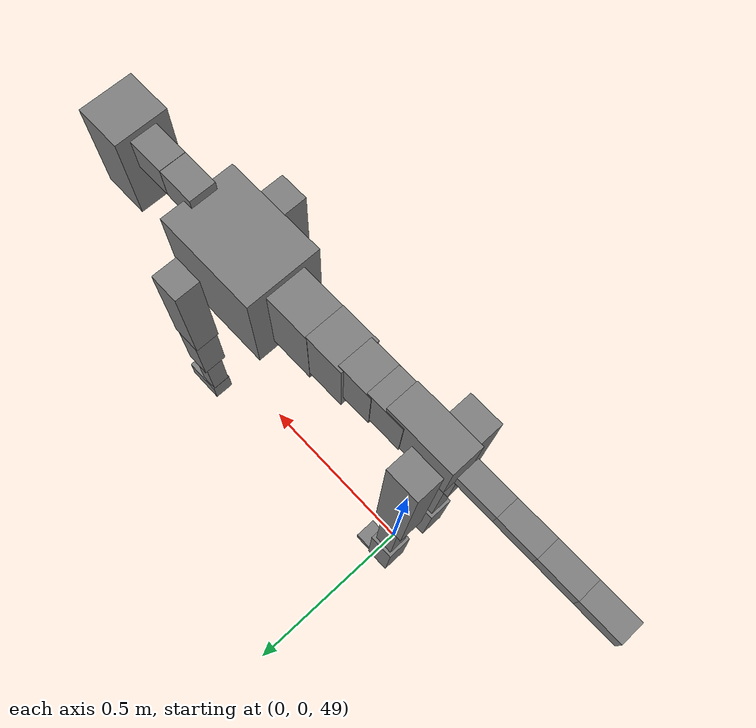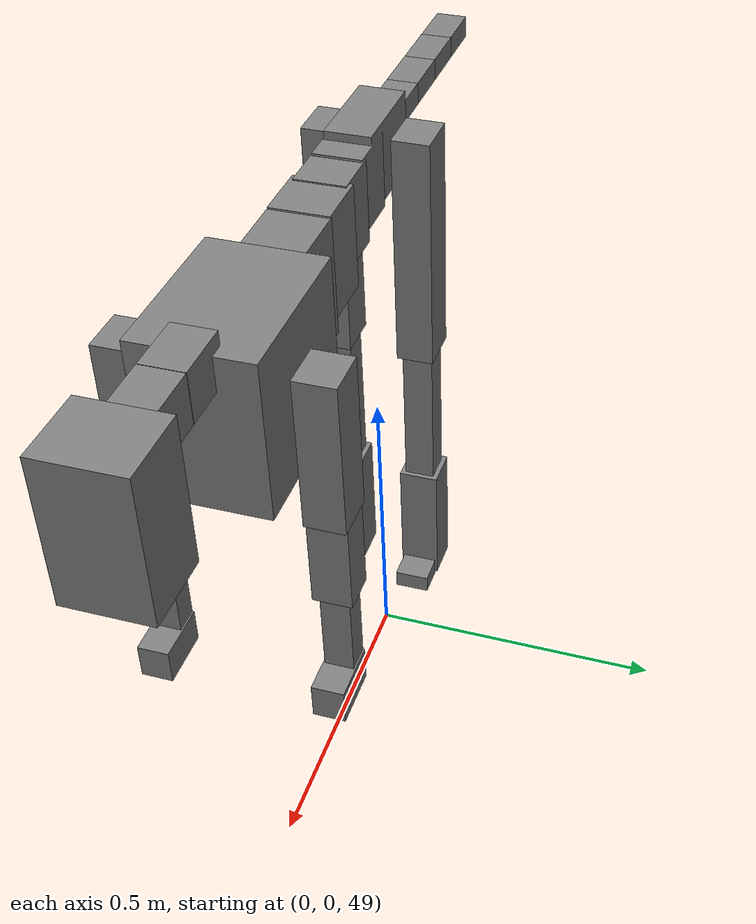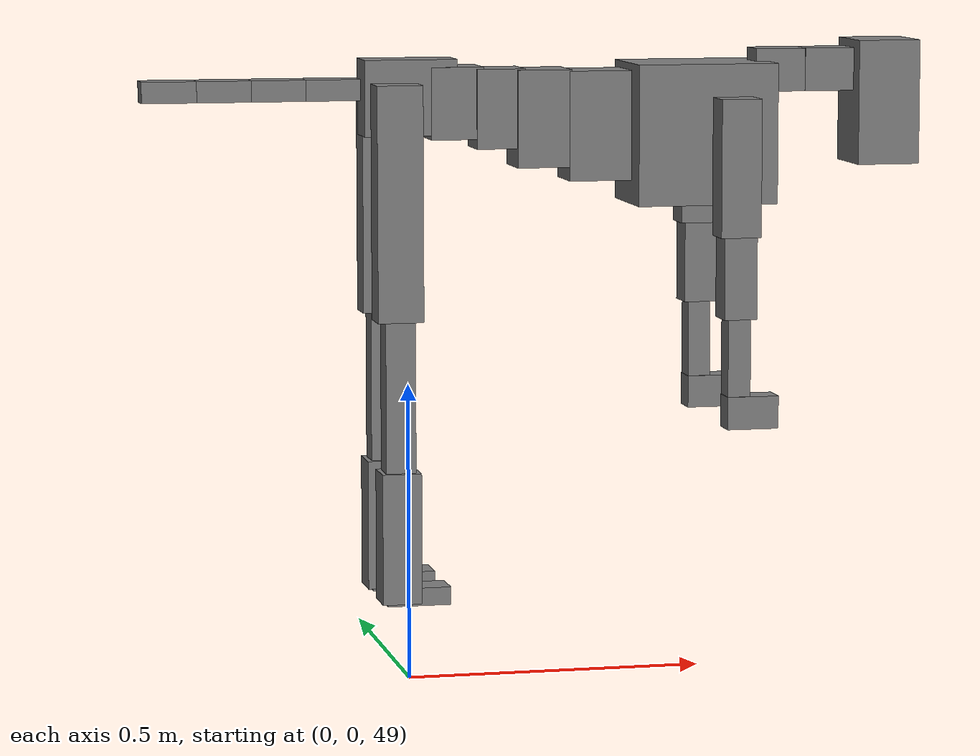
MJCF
<mujoco model="dog">

    <default>
        <joint armature="0.02" stiffness="1" damping="0.2" limited="true"/>
        <geom condim="3" friction="1 0.05 0.05" margin="0.01"/>
        <motor ctrllimited="true" ctrlrange="-1.0 1.0" forcelimited="true" gear="50"/>
    </default>

    <compiler inertiafromgeom="true" angle="radian"/>

    <option timestep="0.016" iterations="50" tolerance="1e-10" solver="Newton" jacobian="dense" cone="pyramidal"/>

    <size nconmax="20000" njmax="60000" nstack="5000000"/>
    <visual>
        <map force="0.1" zfar="30"/>
        <rgba haze="0.15 0.25 0.35 1"/>
        <quality shadowsize="2048"/>
        <global offwidth="800" offheight="800"/>
    </visual>

    <asset>
        <texture type="skybox" builtin="gradient" rgb1="0.3 0.5 0.7" rgb2="0 0 0" width="512" height="512"/>
        <texture name="texplane" type="2d" builtin="checker" rgb1=".2 .3 .4" rgb2=".1 0.15 0.2" width="512" height="512"
                 mark="cross" markrgb=".8 .8 .8"/>
        <texture name="texgeom" type="cube" builtin="flat" mark="cross" width="127" height="1278" rgb1="0.8 0.6 0.4"
                 rgb2="0.8 0.6 0.4" markrgb="1 1 1" random="0.01"/>

        <material name="matplane" reflectance="0.3" texture="texplane" texrepeat="1 1" texuniform="true"/>
        <material name="matgeom" texture="texgeom" texuniform="true" rgba="0.8 0.6 .4 1"/>
    </asset>

    <worldbody>
        <geom name="floor" pos="0 0 0" size="0 0 .25" type="plane" material="matplane" condim="3"/>

        <light directional="false" diffuse=".2 .2 .2" specular="0 0 0" pos="0 0 5" dir="0 0 -1" castshadow="false"/>
        <light mode="targetbodycom" target="torso" directional="false" diffuse=".8 .8 .8" specular="0.3 0.3 0.3"
               pos="0 0 4.0" dir="0 0 -1"/>

        <body name="root" pos="0 0 50">
            <freejoint name="root_1"/>
            <geom type="box" pos="0 0 -0.02" size="0.0774  0.0358  0.063" density="2030"/>

            <body name="spine1" pos="0.054 0 0">
                <joint name="spine1_y" axis="0 1 0" range="0 0.7" limited="true"/>
                <geom type="box" pos="0.02375 0 -0.03" size="0.04375  0.0375  0.05985" density="2030"/>

                <body name="spine2" pos="0.0612 0 0">
                    <joint name="spine2_y" axis="0 1 0" range="-0.15 0.15" limited="true"/>
                    <geom type="box" pos="0.03555  0  -0.04" size="0.04055  0.039  0.06615" density="2030"/>

                    <body name="spine3" pos="0.0730 0 0">
                        <joint name="spine3_y" axis="0 1 0" range="-0.15 0.15" limited="true"/>
                        <geom type="box" pos="0.03555  0  -0.057" size="0.04555  0.0445  0.081" density="2030"/>

                        <body name="spine4" pos="0.0780 0 0">
                            <joint name="spine4_y" axis="0 1 0" range="-0.15 0.15" limited="true"/>
                            <geom type="box" pos="0.05265  0  -0.07" size="0.05265  0.045  0.09135" density="2030"/>

                            <body name="torso" pos="0.1082 0 0">
                                <joint name="torso_y" axis="0 1 0" range="-0.15 0.15" limited="true"/>
                                <geom type="box" pos="0.11925  0  -0.085" size="0.11925  0.085  0.11745"
                                      density="2030"/>

                                <body name="neck1" pos="0.2160  0   0.0180">
                                    <joint name="neck1_y" axis="0 1 0" range="-1.2  -1" limited="true"/>
                                    <geom type="box" pos="0.0423  0  0" size="0.0423  0.03  0.036" density="2325"/>

                                    <body name="neck2" pos="0.0853  0  0">
                                        <joint name="neck2_y" axis="0 1 0" range="0.1  0" limited="true"/>
                                        <geom type="box" pos="0.0423  0  0" size="0.0423  0.03  0.036" density="2325"/>

                                        <body name="head" pos="0.0853  0  0">
                                            <joint name="head_y" axis="0 1 0" range="-0.3  -0.2" limited="true"/>
                                            <geom type="box" pos="0.0531  0  -0.055" size="0.0531  0.06  0.1044"
                                                  density="4030"/>

                                        </body>
                                    </body>
                                </body>

                                <body name="front_shoulder" pos="0.156  0   -0.0480">
                                    <joint name="front_shoulder_y" axis="0 1 0" range="-1 1.5" limited="true"/>
                                    <geom type="box" pos="0 0.13 -0.0879" size="0.0340  0.0291  0.1146" density="1158"/>
                                    <geom type="box" pos="0 -0.13 -0.0879" size="0.0340  0.0291  0.1146"
                                          density="1158"/>

                                    <body name="front_elbow" pos="0  0  -0.1758">
                                        <joint name="front_elbow_y" axis="0 1 0" range="-2 0" limited="true"/>
                                        <geom type="box" pos="0 0.13 -0.0814" size="0.0277  0.0283  0.0814"
                                              density="1081"/>
                                        <geom type="box" pos="0 -0.13 -0.0814" size="0.0277  0.0283  0.0814"
                                              density="1081"/>

                                        <body name="front_wrist" pos="0  0  -0.1627">
                                            <joint name="front_wrist_y" axis="0 1 0" range="-0.2 0" limited="true"/>
                                            <geom type="box" pos="0 0.13 -0.0723" size="0.0192  0.0213  0.0855"
                                                  density="1664"/>
                                            <geom type="box" pos="0 -0.13 -0.0723" size="0.0192  0.0213  0.0855"
                                                  density="1664"/>

                                            <body name="front_finger_end" pos="0  0  -0.1446">
                                                <joint name="front_finger_y" axis="0 1 0" range="-0.4 1"
                                                       limited="true"/>
                                                <geom type="box" pos="0.0237  0.13  -0.0123"
                                                      size="0.0435  0.0237  0.0273" density="1515"/>
                                                <geom type="box" pos="0.0237  -0.13  -0.0123"
                                                      size="0.0435  0.0237  0.0273" density="1515"/>

                                            </body>

                                        </body>
                                    </body>
                                </body>

                            </body>
                        </body>
                    </body>
                </body>
            </body>

            <body name="back_hip" pos="-0.03 0 -0.018">
                <joint name="back_hip_y" axis="0 1 0" range="-1.5 0.3" limited="true"/>
                <geom type="box" pos="0 0.07 -0.1716" size="0.0381  0.0299  0.1944" density="1154"/>
                <geom type="box" pos="0 -0.07 -0.1716" size="0.0381  0.0299  0.1944" density="1154"/>

                <body name="back_knee" pos="0  0  -0.3432">
                    <joint name="back_knee_y" axis="0 1 0" range="0 2.8" limited="true"/>
                    <geom type="box" pos="0 0.07 -0.1422" size="0.0249  0.0246  0.1577" density="1227"/>
                    <geom type="box" pos="0 -0.07 -0.1422" size="0.0249  0.0246  0.1577" density="1227"/>

                    <body name="back_ankle" pos="0  0  -0.2844">
                        <joint name="back_ankle_y" axis="0 1 0" range="-2.2 0" limited="true"/>
                        <geom type="box" pos="0 0.07 -0.0980" size="0.0327  0.0327  0.1092" density="1284"/>
                        <geom type="box" pos="0 -0.07 -0.0980" size="0.0327  0.0327  0.1092" density="1284"/>

                        <body name="back_toe_end" pos="0  0  -0.1960">
                            <joint name="back_toe_y" axis="0 1 0" range="-0.4 1" limited="true"/>
                            <geom type="box" pos="0.0288  0.07  0.0001" size="0.0529  0.0288  0.0149" density="1515"/>
                            <geom type="box" pos="0.0288  -0.07  0.0001" size="0.0529  0.0288  0.0149" density="1515"/>

                        </body>
                    </body>
                </body>
            </body>

            <body name="tail1" pos="-0.074 0 -0.006">
                <joint name="tail1_y" axis="0 1 0" range="-0.2 0.2" limited="true"/>
                <geom type="box" pos="-0.0536  0  0" size="0.045  0.025  0.0175" density="1587"/>

                <body name="tail2" pos="-0.09 0 0">
                    <joint name="tail2_y" axis="0 1 0" range="-0.2 0.2" limited="true"/>
                    <geom type="box" pos="-0.0536  0  0" size="0.045  0.025  0.0175" density="1587"/>

                    <body name="tail3" pos="-0.09 0 0">
                        <joint name="tail3_y" axis="0 1 0" range="-0.2 0.2" limited="true"/>
                        <geom type="box" pos="-0.0536  0  0" size="0.045  0.025  0.0175" density="1587"/>

                        <body name="tail4" pos="-0.09 0 0">
                            <joint name="tail4_y" axis="0 1 0" range="-0.2 0.2" limited="true"/>
                            <geom type="box" pos="-0.0536  0  0" size="0.045  0.025  0.0175" density="1587"/>

                        </body>
                    </body>
                </body>
            </body>
        </body>
    </worldbody>

    <actuator>
        <motor joint="spine1_y" forcerange="-150 150     "/>
        <motor joint="spine2_y" forcerange="-150 150     "/>
        <motor joint="spine3_y" forcerange="-150 150     "/>
        <motor joint="spine4_y" forcerange="-150 150     "/>
        <motor joint="torso_y" forcerange="-150 150     "/>
        <motor joint="neck1_y" forcerange="-100 100       "/>
        <motor joint="neck2_y" forcerange="-100 100       "/>
        <motor joint="head_y" forcerange="-150 150       "/>
        <motor joint="front_shoulder_y" forcerange="-161.88 131.92"/>
        <motor joint="front_elbow_y" forcerange="-195.56 110.33"/>
        <motor joint="front_wrist_y" forcerange="-50.34 120.44"/>
        <motor joint="front_finger_y" forcerange="-55.61 30.89"/>
        <motor joint="back_hip_y" forcerange="-319.87 278.78"/>
        <motor joint="back_knee_y" forcerange="-213.08 344.42"/>
        <motor joint="back_angle_y" forcerange="-198.66 225.33"/>
        <motor joint="back_toe_y" forcerange="-57.13 93.57"/>
        <motor joint="tail1_y" forcerange="-50 50     "/>
        <motor joint="tail2_y" forcerange="-50 50     "/>
        <motor joint="tail3_y" forcerange="-50 50     "/>
        <motor joint="tail4_y" forcerange="-50 50     "/>
    </actuator>
</mujoco>
